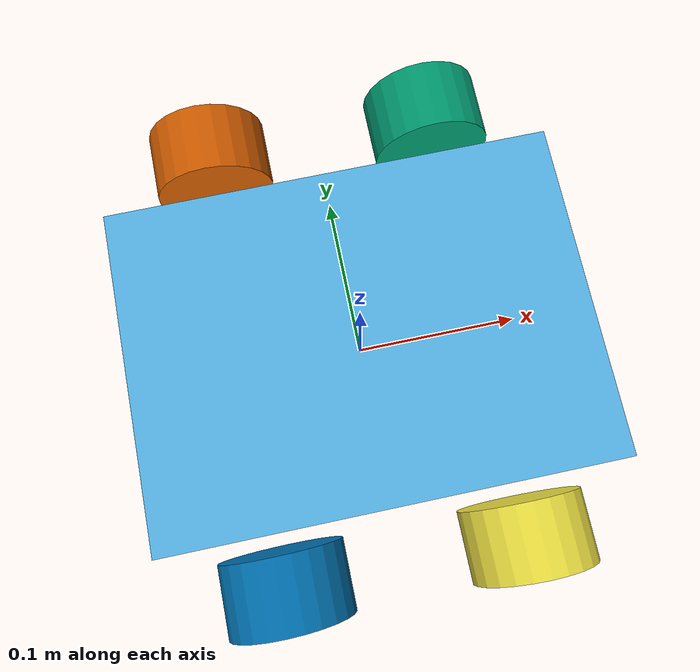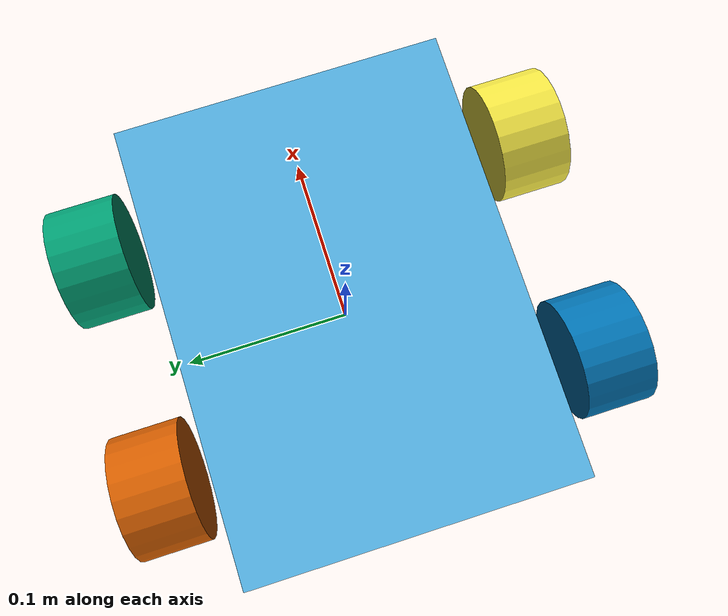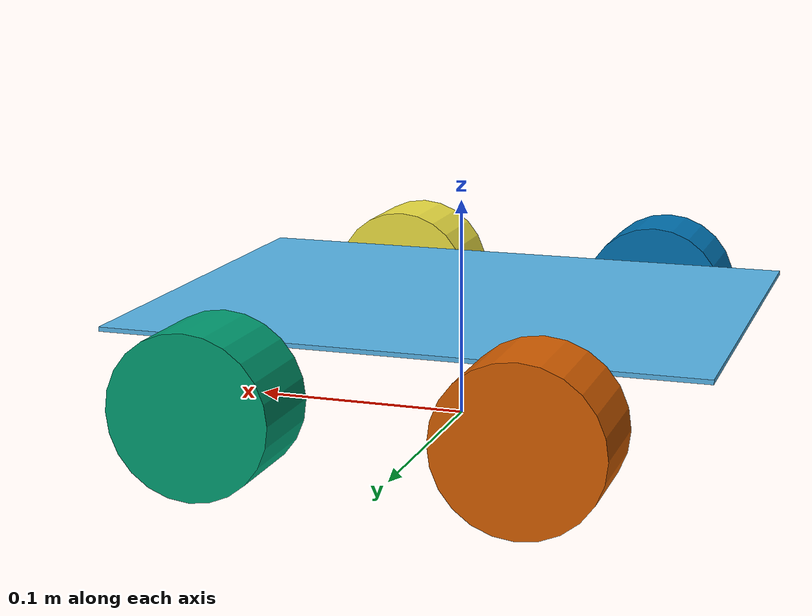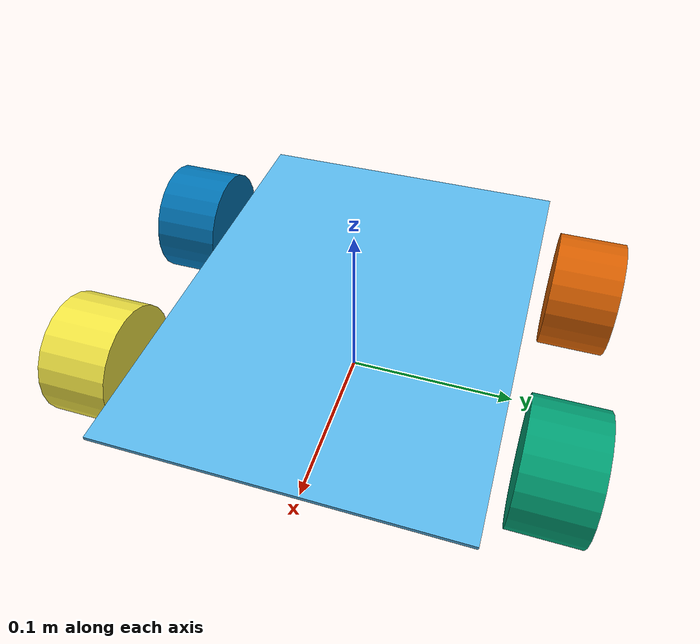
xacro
<?xml version="1.0"?>
<robot name="airavat1.0" xmlns:xacro="https://www.ros.org/wiki/xacro">

    <xacro:property name="ch_length" value="0.264" />
    <xacro:property name="ch_width" value="0.195" />
    <xacro:property name="ch_height" value="0.002" />

    <xacro:property name="wh_width" value="0.0395" />
    <xacro:property name="wh_diameter" value="0.07" />

    <xacro:property name="wh_ch_dist" value = "0.007" />
    <xacro:property name="wh_ch_offset" value = "0.018" />

    <xacro:property name="wheelbase" value ="0.135" />
    <xacro:property name="trackwidth" value = "0.255" />

    <xacro:property name="ch_mass" value = "0.9" />
    <xacro:property name="wh_mass" value = "0.04" />

    <xacro:macro name="wheel_link" params="prefix">
        <link name="wheel_${prefix}">
            <visual>
                <geometry>
                    <cylinder radius = "${wh_diameter/2}" length = "${wh_width}" />
                </geometry>
                <origin xyz ="0 0 0" rpy = "${pi/2.0} 0 0" />
                <material name = "blrubber" />
            </visual>
            <collision>
                <geometry>
                    <sphere radius = "${wh_diameter/2}" />
                </geometry>
                <origin xyz ="0 0 0" rpy = "${pi/2} 0 0" />
            </collision>
            <xacro:wheel_inertia m="${wh_mass}" rad="${wh_diameter/2}" length="${wh_width}" o_xyz="0 0 0" o_rpy="${pi/2.0} 0 0" />
        </link>
    </xacro:macro>

    <link name="base_footprint">
        <inertial>
            <mass value = "0.01" />
            <inertia ixx="1e-4" ixy="0" ixz="0" iyy="1e-4" iyz="0" izz="1e-4" />
            <origin xyz="0 0 0" rpy="0 0 0" />
        </inertial>
    </link>

    <joint name="base_joint" type = "fixed">
        <parent link = "base_footprint" />
        <child link = "base_link" />
        <origin xyz = "0 0 ${wh_diameter/2 + wh_ch_offset + ch_height/2}" rpy = "0 0 0" />
    </joint>

    <link name = "base_link">
        <visual>
            <geometry>
                <box size = "${ch_length} ${ch_width} ${ch_height}" />
            </geometry>
            <origin xyz = "0 0 0" rpy = "0 0 0" />
            <material name="steel" />
        </visual>
        <collision>
            <geometry>
                <box size="${ch_length} ${ch_width} ${ch_height}" />
            </geometry>
            <origin xyz="0 0 0" rpy="0 0 0" />
        </collision>
        <xacro:box_inertia m="${ch_mass}" x="${ch_length}" y="${ch_width}" z="${ch_height}" o_xyz="0 0 0" o_rpy="0 0 0" />
    </link>

    <gazebo reference="base_link">
        <disable_link_lumping>true</disable_link_lumping>
    </gazebo>

    <xacro:wheel_link prefix="FL" />
    <xacro:wheel_link prefix="FR" />
    <xacro:wheel_link prefix="RR" />
    <xacro:wheel_link prefix="RL" />

    <joint name = "ch_wheel_FL" type = "continuous" >
        <parent link = "base_link" />
        <child link = "wheel_FL" />
        <axis xyz = "0 1 0" />
        <origin xyz = "${wheelbase/2} ${trackwidth/2} -${ch_height/2 + wh_ch_offset}" rpy = "0 0 0" />
    </joint>

    <joint name = "ch_wheel_FR" type = "continuous" >
        <parent link = "base_link" />
        <child link = "wheel_FR" />
        <axis xyz = "0 1 0" />
        <origin xyz = "${wheelbase/2} -${trackwidth/2} -${ch_height/2 + wh_ch_offset}" rpy = "0 0 0" />
    </joint>

    <joint name = "ch_wheel_RR" type = "continuous" >
        <parent link = "base_link" />
        <child link = "wheel_RR" />
        <axis xyz = "0 1 0" />
        <origin xyz = "-${wheelbase/2} -${trackwidth/2} -${ch_height/2 + wh_ch_offset}" rpy = "0 0 0" />
    </joint>

    <joint name = "ch_wheel_RL" type = "continuous" >
        <parent link = "base_link" />
        <child link = "wheel_RL" />
        <axis xyz = "0 1 0" />
        <origin xyz = "-${wheelbase/2} ${trackwidth/2} -${ch_height/2 + wh_ch_offset}" rpy = "0 0 0" />
    </joint>

</robot>
